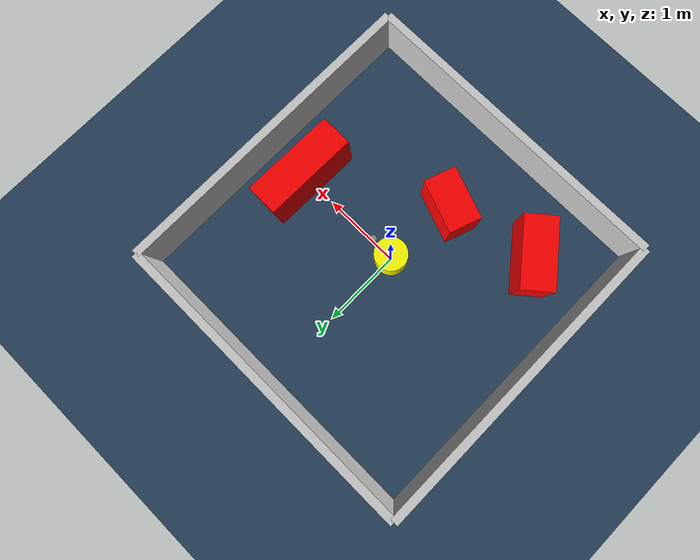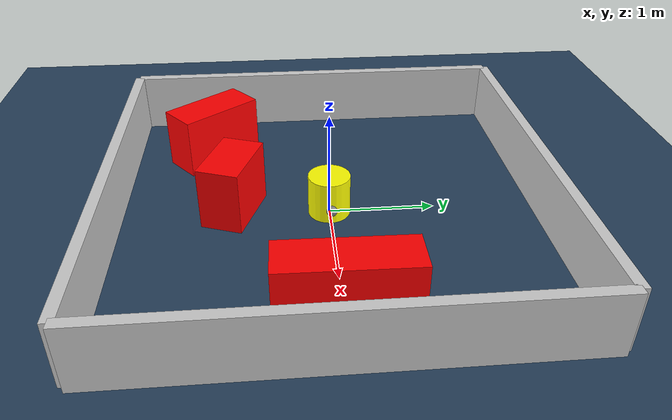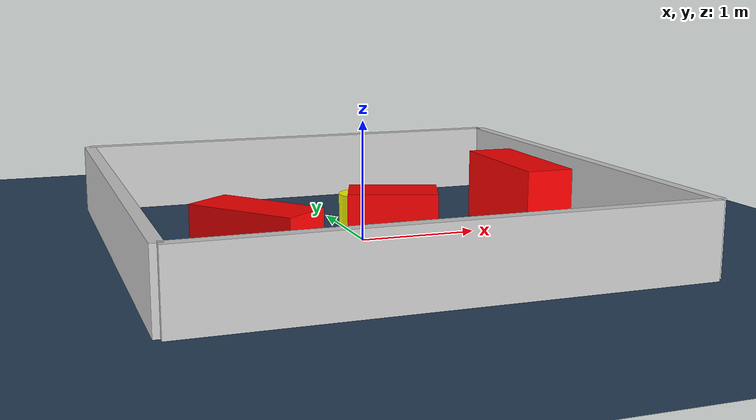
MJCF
<?xml version="1.0" ?>
<mujoco model="generated_environment">
  <option timestep="0.01" integrator="RK4" cone="elliptic"/>
  <default>
    <geom density="1"/>
  </default>
  <asset>
    <texture builtin="gradient" height="3072" rgb1="0.3 0.5 0.7" rgb2="0 0 0" type="skybox" width="512"/>
    <texture builtin="checker" height="300" mark="edge" markrgb="0.8 0.8 0.8" name="groundplane" rgb1="0.2 0.3 0.4" rgb2="0.1 0.2 0.3" type="2d" width="300"/>
    <material name="groundplane" reflectance="0.2" texrepeat="5 5" texture="groundplane" texuniform="true"/>
    <material name="robot" rgba="0.0 1.0 0.0 1"/>
  </asset>
  <worldbody>
    <light dir="0 0 -1" directional="true" pos="0 0 1.5"/>
    <geom condim="4" friction="1.0 0.005 0.001" material="groundplane" name="floor" size="0 0 0.05" type="plane"/>
    <body name="walls">
      <geom name="wall_1" condim="4" pos="-2.0 0.0 0.3" rgba="0.800000011920929 0.800000011920929 0.800000011920929 1.0" size="0.05 2.0 0.3" type="box"/>
      <geom name="wall_2" condim="4" pos="2.0 0.0 0.3" rgba="0.800000011920929 0.800000011920929 0.800000011920929 1.0" size="0.05 2.0 0.3" type="box"/>
      <geom name="wall_3" condim="4" pos="0.0 -2.0 0.3" rgba="0.800000011920929 0.800000011920929 0.800000011920929 1.0" size="2.0 0.05 0.3" type="box"/>
      <geom name="wall_4" condim="4" pos="0.0 2.0 0.3" rgba="0.800000011920929 0.800000011920929 0.800000011920929 1.0" size="2.0 0.05 0.3" type="box"/>
    </body>
    <body name="robot">
      <joint name="joint_x" type="slide" pos="0 0 0" axis="1 0 0"/>
      <joint name="joint_y" type="slide" pos="0 0 0" axis="0 1 0"/>
      <geom name="robot" type="sphere" pos="0.3 0.0 0.2" size="0.05" mass="5." friction="1.0 0.005 0.0001" condim="4" rgba="0.5 0.5 0.5 1.0"/>
      <site name="sensor_ball"/>
    </body>
    <body name="obstacle_movable_1">
      <geom name="obstacle_movable_1" condim="4" pos="0.0 0.0 0.2" euler="0 0 0.0" friction="1.0 0.005 0.001" rgba="1.0 1.0 0.0 1.0" size="0.2 0.2 0.0" type="cylinder" mass="0.1"/>
      <joint type="free"/>
    </body>
    <body name="obstacle_2_static">
      <geom name="obstacle_2_static" condim="4" pos="-0.08209034665091242 -0.9056672895209313 0.3" euler="0 0 159.80903558603723" friction="1.0 0.005 0.001" rgba="1 0 0 1" size="0.33025143245037686 0.2 0.3" type="box"/>
    </body>
    <body name="obstacle_3_static">
      <geom name="obstacle_3_static" condim="4" pos="1.436688881531611 0.019668504157186018 0.3" euler="0 0 89.15542838170497" friction="1.0 0.005 0.001" rgba="1 0 0 1" size="0.585601654222776 0.2 0.3" type="box"/>
    </body>
    <body name="obstacle_4_static">
      <geom name="obstacle_4_static" condim="4" pos="-1.187044784978008 -1.1437636688100494 0.3" euler="0 0 128.97981310855826" friction="1.0 0.005 0.001" rgba="1 0 0 1" size="0.43379770938493795 0.2 0.3" type="box"/>
    </body>
  </worldbody>
  <actuator>
    <motor name="actuator_x" joint="joint_x" gear="1" ctrlrange="-1 1"/>
    <motor name="actuator_y" joint="joint_y" gear="1" ctrlrange="-1 1"/>
  </actuator>
</mujoco>
